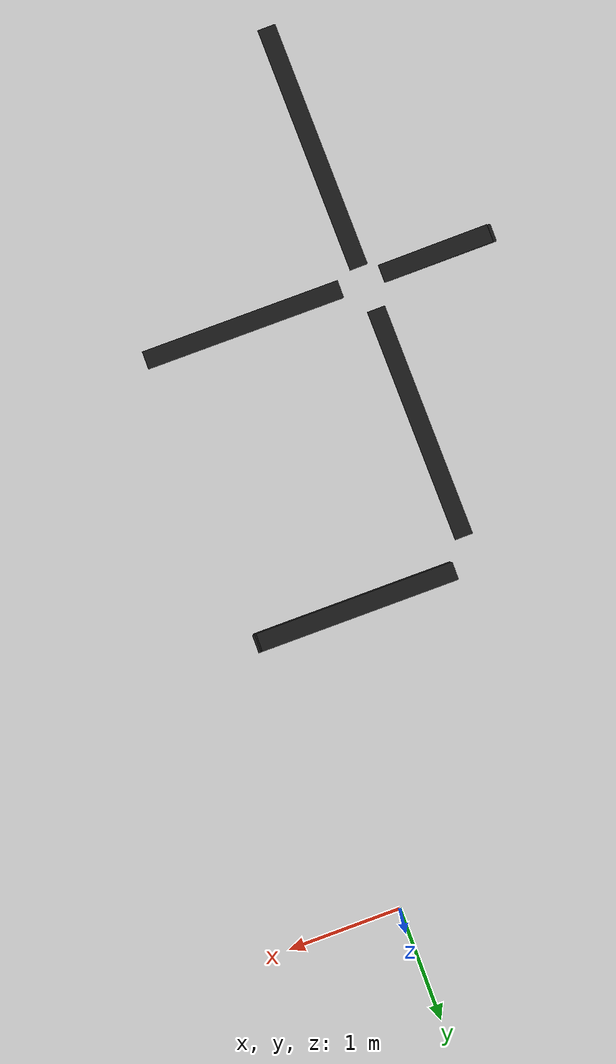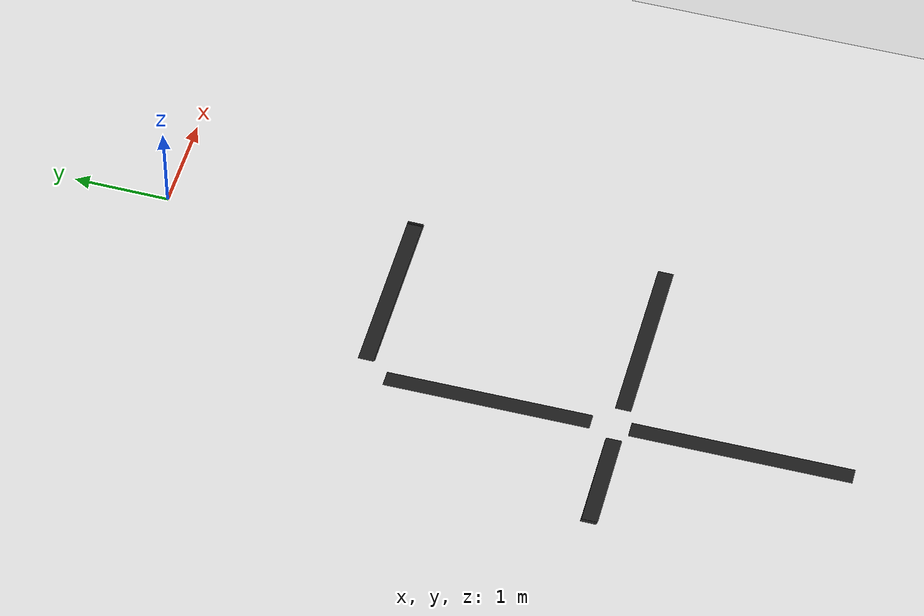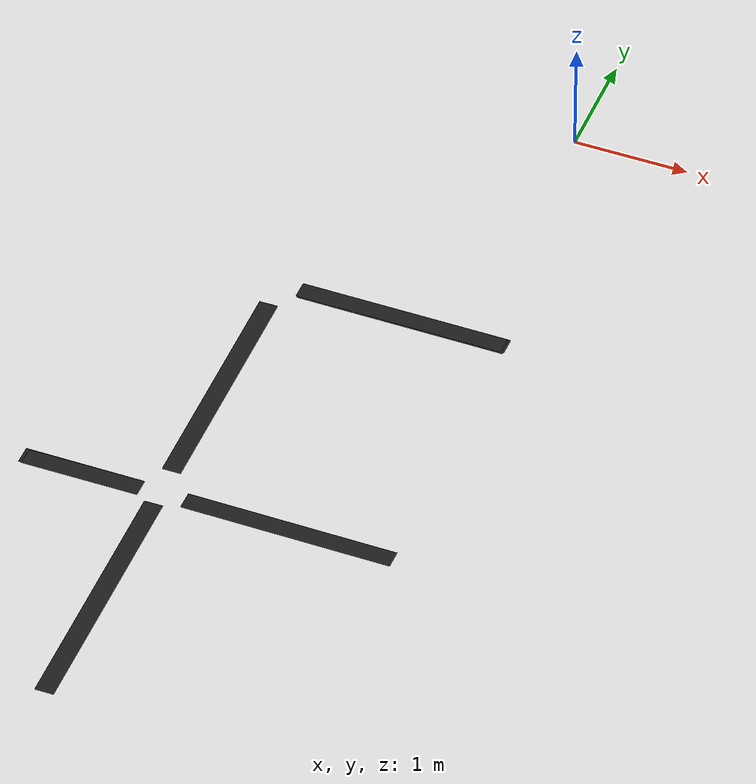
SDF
<sdf version="1.7">
 <world name="default">
  <model name="ground_plane">
   <static>1</static>
   <link name="link">
    <collision name="collision">
     <geometry><plane><normal>0 0 1</normal><size>100 100</size></plane></geometry>
     <surface>
      <contact><collide_bitmask>65535</collide_bitmask></contact>
      <friction><ode><mu>100</mu><mu2>50</mu2></ode></friction>
     </surface>
    </collision>
    <visual name="visual">
     <cast_shadows>0</cast_shadows>
     <geometry><plane><normal>0 0 1</normal><size>100 100</size></plane></geometry>
     <material>
      <script><uri>file://media/materials/scripts/gazebo.material</uri><name>Gazebo/White</name></script>
     </material>
    </visual>
   </link>
  </model>
  <model name="unit_box_clone_0_clone_clone_0_clone_0_clone">
   <link name="link">
    <inertial>
     <mass>1</mass>
     <inertia>
      <ixx>0.166667</ixx>
      <ixy>0</ixy>
      <ixz>0</ixz>
      <iyy>0.166667</iyy>
      <iyz>0</iyz>
      <izz>0.166667</izz>
     </inertia>
    </inertial>
    <visual name="visual">
     <geometry><box><size>1 0.160776 0.000937</size></box></geometry>
     <material>
      <script><name>Gazebo/Black</name><uri>file://media/materials/scripts/gazebo.material</uri></script>
      <shader type="pixel"><normal_map>__default__</normal_map></shader>
      <ambient>0 0 0 1</ambient>
      <diffuse>0 0 0 1</diffuse>
      <specular>0.1 0.1 0.1 1</specular>
      <emissive>0 0 0 1</emissive>
     </material>
    </visual>
    <collision name="collision">
     <geometry><box><size>1 0.160776 0.000937</size></box></geometry>
     <surface>
      <friction>
       <ode><mu>1</mu><mu2>1</mu2><fdir1>0 0 0</fdir1><slip1>0</slip1><slip2>0</slip2></ode>
       <torsional>
        <coefficient>1</coefficient>
        <patch_radius>0</patch_radius>
        <surface_radius>0</surface_radius>
        <use_patch_radius>1</use_patch_radius>
        <ode><slip>0</slip></ode>
       </torsional>
      </friction>
      <bounce><restitution_coefficient>0</restitution_coefficient><threshold>1e+06</threshold></bounce>
      <contact>
       <collide_without_contact>0</collide_without_contact>
       <collide_without_contact_bitmask>1</collide_without_contact_bitmask>
       <collide_bitmask>1</collide_bitmask>
       <ode>
        <soft_cfm>0</soft_cfm>
        <soft_erp>0.2</soft_erp>
        <kp>1e+13</kp>
        <kd>1</kd>
        <max_vel>0.01</max_vel>
        <min_depth>0</min_depth>
       </ode>
       <bullet>
        <split_impulse>1</split_impulse>
        <split_impulse_penetration_threshold>-0.01</split_impulse_penetration_threshold>
        <soft_cfm>0</soft_cfm>
        <soft_erp>0.2</soft_erp>
        <kp>1e+13</kp>
        <kd>1</kd>
       </bullet>
      </contact>
     </surface>
    </collision>
   </link>
   <static>0</static>
   <pose>-2.28094 -5.1269 0.000407 -1e-06 -0.000123 0</pose>
  </model>
  <model name="unit_box_clone_0_clone_clone_0_clone_0_clone_0">
   <link name="link">
    <inertial>
     <mass>1</mass>
     <inertia>
      <ixx>0.166667</ixx>
      <ixy>0</ixy>
      <ixz>0</ixz>
      <iyy>0.166667</iyy>
      <iyz>0</iyz>
      <izz>0.166667</izz>
     </inertia>
    </inertial>
    <visual name="visual">
     <geometry><box><size>1 0.160776 0.000937</size></box></geometry>
     <material>
      <script><name>Gazebo/Black</name><uri>file://media/materials/scripts/gazebo.material</uri></script>
      <shader type="pixel"><normal_map>__default__</normal_map></shader>
      <ambient>0 0 0 1</ambient>
      <diffuse>0 0 0 1</diffuse>
      <specular>0.1 0.1 0.1 1</specular>
      <emissive>0 0 0 1</emissive>
     </material>
    </visual>
    <collision name="collision">
     <geometry><box><size>1 0.160776 0.000937</size></box></geometry>
     <surface>
      <friction>
       <ode><mu>1</mu><mu2>1</mu2><fdir1>0 0 0</fdir1><slip1>0</slip1><slip2>0</slip2></ode>
       <torsional>
        <coefficient>1</coefficient>
        <patch_radius>0</patch_radius>
        <surface_radius>0</surface_radius>
        <use_patch_radius>1</use_patch_radius>
        <ode><slip>0</slip></ode>
       </torsional>
      </friction>
      <bounce><restitution_coefficient>0</restitution_coefficient><threshold>1e+06</threshold></bounce>
      <contact>
       <collide_without_contact>0</collide_without_contact>
       <collide_without_contact_bitmask>1</collide_without_contact_bitmask>
       <collide_bitmask>1</collide_bitmask>
       <ode>
        <soft_cfm>0</soft_cfm>
        <soft_erp>0.2</soft_erp>
        <kp>1e+13</kp>
        <kd>1</kd>
        <max_vel>0.01</max_vel>
        <min_depth>0</min_depth>
       </ode>
       <bullet>
        <split_impulse>1</split_impulse>
        <split_impulse_penetration_threshold>-0.01</split_impulse_penetration_threshold>
        <soft_cfm>0</soft_cfm>
        <soft_erp>0.2</soft_erp>
        <kp>1e+13</kp>
        <kd>1</kd>
       </bullet>
      </contact>
     </surface>
    </collision>
   </link>
   <static>0</static>
   <pose>-2.25322 -5.13037 0.001253 -3e-06 6.5e-05 0.003928</pose>
  </model>
  <model name="unit_box_clone_0_clone_clone_0_clone_clone_clone_4_clone">
   <link name="link">
    <inertial>
     <mass>1</mass>
     <inertia>
      <ixx>0.166667</ixx>
      <ixy>0</ixy>
      <ixz>0</ixz>
      <iyy>0.166667</iyy>
      <iyz>0</iyz>
      <izz>0.166667</izz>
     </inertia>
    </inertial>
    <visual name="visual">
     <geometry><box><size>2.09502 0.160776 0.000937</size></box></geometry>
     <material>
      <script><name>Gazebo/Black</name><uri>file://media/materials/scripts/gazebo.material</uri></script>
      <shader type="pixel"><normal_map>__default__</normal_map></shader>
      <ambient>0 0 0 1</ambient>
      <diffuse>0 0 0 1</diffuse>
      <specular>0.1 0.1 0.1 1</specular>
      <emissive>0 0 0 1</emissive>
     </material>
    </visual>
    <collision name="collision">
     <geometry><box><size>2.09502 0.160776 0.000937</size></box></geometry>
     <surface>
      <friction>
       <ode><mu>1</mu><mu2>1</mu2><fdir1>0 0 0</fdir1><slip1>0</slip1><slip2>0</slip2></ode>
       <torsional>
        <coefficient>1</coefficient>
        <patch_radius>0</patch_radius>
        <surface_radius>0</surface_radius>
        <use_patch_radius>1</use_patch_radius>
        <ode><slip>0</slip></ode>
       </torsional>
      </friction>
      <bounce><restitution_coefficient>0</restitution_coefficient><threshold>1e+06</threshold></bounce>
      <contact>
       <collide_without_contact>0</collide_without_contact>
       <collide_without_contact_bitmask>1</collide_without_contact_bitmask>
       <collide_bitmask>1</collide_bitmask>
       <ode>
        <soft_cfm>0</soft_cfm>
        <soft_erp>0.2</soft_erp>
        <kp>1e+13</kp>
        <kd>1</kd>
        <max_vel>0.01</max_vel>
        <min_depth>0</min_depth>
       </ode>
       <bullet>
        <split_impulse>1</split_impulse>
        <split_impulse_penetration_threshold>-0.01</split_impulse_penetration_threshold>
        <soft_cfm>0</soft_cfm>
        <soft_erp>0.2</soft_erp>
        <kp>1e+13</kp>
        <kd>1</kd>
       </bullet>
      </contact>
     </surface>
    </collision>
   </link>
   <static>0</static>
   <pose>-1.61319 -3.81358 0.000352 -2e-06 0.000105 -1.56181</pose>
  </model>
  <model name="unit_box_clone_0_clone_clone_0_clone_clone_clone_4_clone_0">
   <link name="link">
    <inertial>
     <mass>1</mass>
     <inertia>
      <ixx>0.166667</ixx>
      <ixy>0</ixy>
      <ixz>0</ixz>
      <iyy>0.166667</iyy>
      <iyz>0</iyz>
      <izz>0.166667</izz>
     </inertia>
    </inertial>
    <visual name="visual">
     <geometry><box><size>2.22866 0.160776 0.000937</size></box></geometry>
     <material>
      <script><name>Gazebo/Black</name><uri>file://media/materials/scripts/gazebo.material</uri></script>
      <shader type="pixel"><normal_map>__default__</normal_map></shader>
      <ambient>0 0 0 1</ambient>
      <diffuse>0 0 0 1</diffuse>
      <specular>0.1 0.1 0.1 1</specular>
      <emissive>0 0 0 1</emissive>
     </material>
    </visual>
    <collision name="collision">
     <geometry><box><size>2.22866 0.160776 0.000937</size></box></geometry>
     <surface>
      <friction>
       <ode><mu>1</mu><mu2>1</mu2><fdir1>0 0 0</fdir1><slip1>0</slip1><slip2>0</slip2></ode>
       <torsional>
        <coefficient>1</coefficient>
        <patch_radius>0</patch_radius>
        <surface_radius>0</surface_radius>
        <use_patch_radius>1</use_patch_radius>
        <ode><slip>0</slip></ode>
       </torsional>
      </friction>
      <bounce><restitution_coefficient>0</restitution_coefficient><threshold>1e+06</threshold></bounce>
      <contact>
       <collide_without_contact>0</collide_without_contact>
       <collide_without_contact_bitmask>1</collide_without_contact_bitmask>
       <collide_bitmask>1</collide_bitmask>
       <ode>
        <soft_cfm>0</soft_cfm>
        <soft_erp>0.2</soft_erp>
        <kp>1e+13</kp>
        <kd>1</kd>
        <max_vel>0.01</max_vel>
        <min_depth>0</min_depth>
       </ode>
       <bullet>
        <split_impulse>1</split_impulse>
        <split_impulse_penetration_threshold>-0.01</split_impulse_penetration_threshold>
        <soft_cfm>0</soft_cfm>
        <soft_erp>0.2</soft_erp>
        <kp>1e+13</kp>
        <kd>1</kd>
       </bullet>
      </contact>
     </surface>
    </collision>
   </link>
   <static>0</static>
   <pose>-1.58222 -6.36482 0.000352 -2e-06 -0.000105 -1.56203</pose>
  </model>
  <model name="unit_box_clone_0_clone_clone_0_clone_0_clone_3_clone">
   <link name="link">
    <inertial>
     <mass>1</mass>
     <inertia>
      <ixx>0.166667</ixx>
      <ixy>0</ixy>
      <ixz>0</ixz>
      <iyy>0.166667</iyy>
      <iyz>0</iyz>
      <izz>0.166667</izz>
     </inertia>
    </inertial>
    <visual name="visual">
     <geometry><box><size>1.78538 0.160776 0.000937</size></box></geometry>
     <material>
      <script><name>Gazebo/Black</name><uri>file://media/materials/scripts/gazebo.material</uri></script>
      <shader type="pixel"><normal_map>__default__</normal_map></shader>
      <ambient>0 0 0 1</ambient>
      <diffuse>0 0 0 1</diffuse>
      <specular>0.1 0.1 0.1 1</specular>
      <emissive>0 0 0 1</emissive>
     </material>
    </visual>
    <collision name="collision">
     <geometry><box><size>1.78538 0.160776 0.000937</size></box></geometry>
     <surface>
      <friction>
       <ode><mu>1</mu><mu2>1</mu2><fdir1>0 0 0</fdir1><slip1>0</slip1><slip2>0</slip2></ode>
       <torsional>
        <coefficient>1</coefficient>
        <patch_radius>0</patch_radius>
        <surface_radius>0</surface_radius>
        <use_patch_radius>1</use_patch_radius>
        <ode><slip>0</slip></ode>
       </torsional>
      </friction>
      <bounce><restitution_coefficient>0</restitution_coefficient><threshold>1e+06</threshold></bounce>
      <contact>
       <collide_without_contact>0</collide_without_contact>
       <collide_without_contact_bitmask>1</collide_without_contact_bitmask>
       <collide_bitmask>1</collide_bitmask>
       <ode>
        <soft_cfm>0</soft_cfm>
        <soft_erp>0.2</soft_erp>
        <kp>1e+13</kp>
        <kd>1</kd>
        <max_vel>0.01</max_vel>
        <min_depth>0</min_depth>
       </ode>
       <bullet>
        <split_impulse>1</split_impulse>
        <split_impulse_penetration_threshold>-0.01</split_impulse_penetration_threshold>
        <soft_cfm>0</soft_cfm>
        <soft_erp>0.2</soft_erp>
        <kp>1e+13</kp>
        <kd>1</kd>
       </bullet>
      </contact>
     </surface>
    </collision>
   </link>
   <static>0</static>
   <pose>-0.486756 -5.13225 0.000425 1e-06 4.9e-05 -0.004556</pose>
  </model>
  <model name="unit_box_clone_0_clone_clone_0_clone_0_clone_3_clone_clone">
   <link name="link">
    <inertial>
     <mass>1</mass>
     <inertia>
      <ixx>0.166667</ixx>
      <ixy>0</ixy>
      <ixz>0</ixz>
      <iyy>0.166667</iyy>
      <iyz>0</iyz>
      <izz>0.166667</izz>
     </inertia>
    </inertial>
    <visual name="visual">
     <geometry><box><size>1.78538 0.160776 0.000937</size></box></geometry>
     <material>
      <script><name>Gazebo/Black</name><uri>file://media/materials/scripts/gazebo.material</uri></script>
      <shader type="pixel"><normal_map>__default__</normal_map></shader>
      <ambient>0 0 0 1</ambient>
      <diffuse>0 0 0 1</diffuse>
      <specular>0.1 0.1 0.1 1</specular>
      <emissive>0 0 0 1</emissive>
     </material>
    </visual>
    <collision name="collision">
     <geometry><box><size>1.78538 0.160776 0.000937</size></box></geometry>
     <surface>
      <friction>
       <ode><mu>1</mu><mu2>1</mu2><fdir1>0 0 0</fdir1><slip1>0</slip1><slip2>0</slip2></ode>
       <torsional>
        <coefficient>1</coefficient>
        <patch_radius>0</patch_radius>
        <surface_radius>0</surface_radius>
        <use_patch_radius>1</use_patch_radius>
        <ode><slip>0</slip></ode>
       </torsional>
      </friction>
      <bounce><restitution_coefficient>0</restitution_coefficient><threshold>1e+06</threshold></bounce>
      <contact>
       <collide_without_contact>0</collide_without_contact>
       <collide_without_contact_bitmask>1</collide_without_contact_bitmask>
       <collide_bitmask>1</collide_bitmask>
       <ode>
        <soft_cfm>0</soft_cfm>
        <soft_erp>0.2</soft_erp>
        <kp>1e+13</kp>
        <kd>1</kd>
        <max_vel>0.01</max_vel>
        <min_depth>0</min_depth>
       </ode>
       <bullet>
        <split_impulse>1</split_impulse>
        <split_impulse_penetration_threshold>-0.01</split_impulse_penetration_threshold>
        <soft_cfm>0</soft_cfm>
        <soft_erp>0.2</soft_erp>
        <kp>1e+13</kp>
        <kd>1</kd>
       </bullet>
      </contact>
     </surface>
    </collision>
   </link>
   <static>0</static>
   <pose>-0.545807 -2.53374 0.002261 2e-05 -0.00011 -0.00477</pose>
  </model>
  <model name="unit_box_clone_0_clone_clone_0_clone_0_clone_3_clone_clone_0">
   <link name="link">
    <inertial>
     <mass>1</mass>
     <inertia>
      <ixx>0.166667</ixx>
      <ixy>0</ixy>
      <ixz>0</ixz>
      <iyy>0.166667</iyy>
      <iyz>0</iyz>
      <izz>0.166667</izz>
     </inertia>
    </inertial>
    <visual name="visual">
     <geometry><box><size>1.78538 0.160776 0.000937</size></box></geometry>
     <material>
      <script><name>Gazebo/Black</name><uri>file://media/materials/scripts/gazebo.material</uri></script>
      <shader type="pixel"><normal_map>__default__</normal_map></shader>
      <ambient>0 0 0 1</ambient>
      <diffuse>0 0 0 1</diffuse>
      <specular>0.1 0.1 0.1 1</specular>
      <emissive>0 0 0 1</emissive>
     </material>
    </visual>
    <collision name="collision">
     <geometry><box><size>1.78538 0.160776 0.000937</size></box></geometry>
     <surface>
      <friction>
       <ode><mu>1</mu><mu2>1</mu2><fdir1>0 0 0</fdir1><slip1>0</slip1><slip2>0</slip2></ode>
       <torsional>
        <coefficient>1</coefficient>
        <patch_radius>0</patch_radius>
        <surface_radius>0</surface_radius>
        <use_patch_radius>1</use_patch_radius>
        <ode><slip>0</slip></ode>
       </torsional>
      </friction>
      <bounce><restitution_coefficient>0</restitution_coefficient><threshold>1e+06</threshold></bounce>
      <contact>
       <collide_without_contact>0</collide_without_contact>
       <collide_without_contact_bitmask>1</collide_without_contact_bitmask>
       <collide_bitmask>1</collide_bitmask>
       <ode>
        <soft_cfm>0</soft_cfm>
        <soft_erp>0.2</soft_erp>
        <kp>1e+13</kp>
        <kd>1</kd>
        <max_vel>0.01</max_vel>
        <min_depth>0</min_depth>
       </ode>
       <bullet>
        <split_impulse>1</split_impulse>
        <split_impulse_penetration_threshold>-0.01</split_impulse_penetration_threshold>
        <soft_cfm>0</soft_cfm>
        <soft_erp>0.2</soft_erp>
        <kp>1e+13</kp>
        <kd>1</kd>
       </bullet>
      </contact>
     </surface>
    </collision>
   </link>
   <static>0</static>
   <pose>-0.526012 -2.5244 0.001348 0 6.4e-05 -0.004526</pose>
  </model>
  <model name="unit_box_clone_0_clone_clone_0_clone_0_clone_3_clone_clone_1">
   <link name="link">
    <inertial>
     <mass>1</mass>
     <inertia>
      <ixx>0.166667</ixx>
      <ixy>0</ixy>
      <ixz>0</ixz>
      <iyy>0.166667</iyy>
      <iyz>0</iyz>
      <izz>0.166667</izz>
     </inertia>
    </inertial>
    <visual name="visual">
     <geometry><box><size>1.78538 0.160776 0.000937</size></box></geometry>
     <material>
      <script><name>Gazebo/Black</name><uri>file://media/materials/scripts/gazebo.material</uri></script>
      <shader type="pixel"><normal_map>__default__</normal_map></shader>
      <ambient>0 0 0 1</ambient>
      <diffuse>0 0 0 1</diffuse>
      <specular>0.1 0.1 0.1 1</specular>
      <emissive>0 0 0 1</emissive>
     </material>
    </visual>
    <collision name="collision">
     <geometry><box><size>1.78538 0.160776 0.000937</size></box></geometry>
     <surface>
      <friction>
       <ode><mu>1</mu><mu2>1</mu2><fdir1>0 0 0</fdir1><slip1>0</slip1><slip2>0</slip2></ode>
       <torsional>
        <coefficient>1</coefficient>
        <patch_radius>0</patch_radius>
        <surface_radius>0</surface_radius>
        <use_patch_radius>1</use_patch_radius>
        <ode><slip>0</slip></ode>
       </torsional>
      </friction>
      <bounce><restitution_coefficient>0</restitution_coefficient><threshold>1e+06</threshold></bounce>
      <contact>
       <collide_without_contact>0</collide_without_contact>
       <collide_without_contact_bitmask>1</collide_without_contact_bitmask>
       <collide_bitmask>1</collide_bitmask>
       <ode>
        <soft_cfm>0</soft_cfm>
        <soft_erp>0.2</soft_erp>
        <kp>1e+13</kp>
        <kd>1</kd>
        <max_vel>0.01</max_vel>
        <min_depth>0</min_depth>
       </ode>
       <bullet>
        <split_impulse>1</split_impulse>
        <split_impulse_penetration_threshold>-0.01</split_impulse_penetration_threshold>
        <soft_cfm>0</soft_cfm>
        <soft_erp>0.2</soft_erp>
        <kp>1e+13</kp>
        <kd>1</kd>
       </bullet>
      </contact>
     </surface>
    </collision>
   </link>
   <static>0</static>
   <pose>-0.559116 -2.52433 0.003203 2.4e-05 -0.000114 -0.004809</pose>
  </model>
  <model name="unit_box_clone_0_clone_clone_0_clone_0_clone_3_clone_clone_2">
   <link name="link">
    <inertial>
     <mass>1</mass>
     <inertia>
      <ixx>0.166667</ixx>
      <ixy>0</ixy>
      <ixz>0</ixz>
      <iyy>0.166667</iyy>
      <iyz>0</iyz>
      <izz>0.166667</izz>
     </inertia>
    </inertial>
    <visual name="visual">
     <geometry><box><size>1.78538 0.160776 0.000937</size></box></geometry>
     <material>
      <script><name>Gazebo/Black</name><uri>file://media/materials/scripts/gazebo.material</uri></script>
      <shader type="pixel"><normal_map>__default__</normal_map></shader>
      <ambient>0 0 0 1</ambient>
      <diffuse>0 0 0 1</diffuse>
      <specular>0.1 0.1 0.1 1</specular>
      <emissive>0 0 0 1</emissive>
     </material>
    </visual>
    <collision name="collision">
     <geometry><box><size>1.78538 0.160776 0.000937</size></box></geometry>
     <surface>
      <friction>
       <ode><mu>1</mu><mu2>1</mu2><fdir1>0 0 0</fdir1><slip1>0</slip1><slip2>0</slip2></ode>
       <torsional>
        <coefficient>1</coefficient>
        <patch_radius>0</patch_radius>
        <surface_radius>0</surface_radius>
        <use_patch_radius>1</use_patch_radius>
        <ode><slip>0</slip></ode>
       </torsional>
      </friction>
      <bounce><restitution_coefficient>0</restitution_coefficient><threshold>1e+06</threshold></bounce>
      <contact>
       <collide_without_contact>0</collide_without_contact>
       <collide_without_contact_bitmask>1</collide_without_contact_bitmask>
       <collide_bitmask>1</collide_bitmask>
       <ode>
        <soft_cfm>0</soft_cfm>
        <soft_erp>0.2</soft_erp>
        <kp>1e+13</kp>
        <kd>1</kd>
        <max_vel>0.01</max_vel>
        <min_depth>0</min_depth>
       </ode>
       <bullet>
        <split_impulse>1</split_impulse>
        <split_impulse_penetration_threshold>-0.01</split_impulse_penetration_threshold>
        <soft_cfm>0</soft_cfm>
        <soft_erp>0.2</soft_erp>
        <kp>1e+13</kp>
        <kd>1</kd>
       </bullet>
      </contact>
     </surface>
    </collision>
   </link>
   <static>0</static>
   <pose>-0.53455 -2.53383 0.000424 -1e-06 5e-05 -0.004817</pose>
  </model>
 </world>
</sdf>
